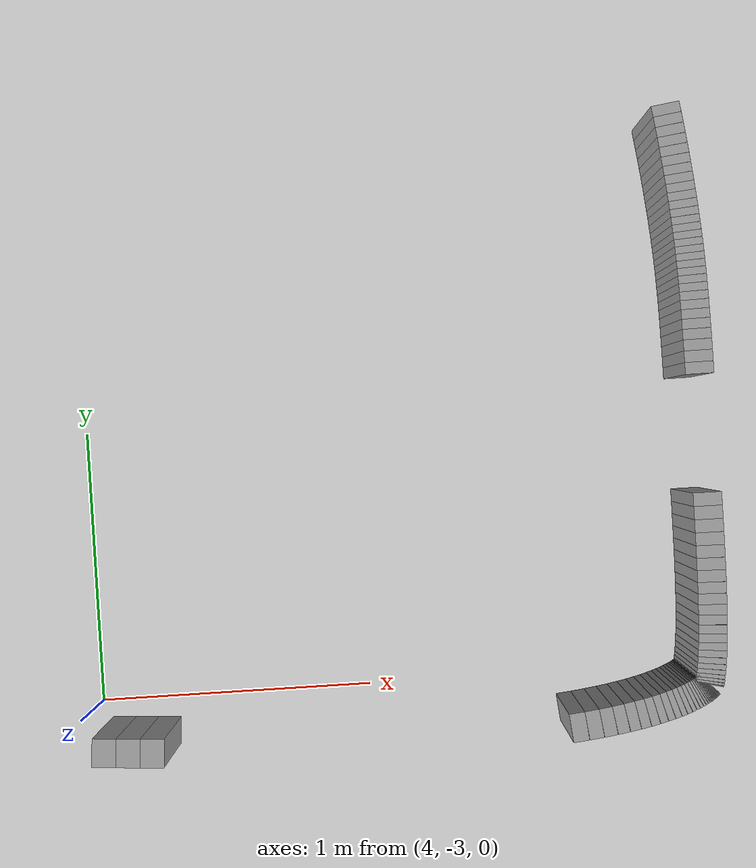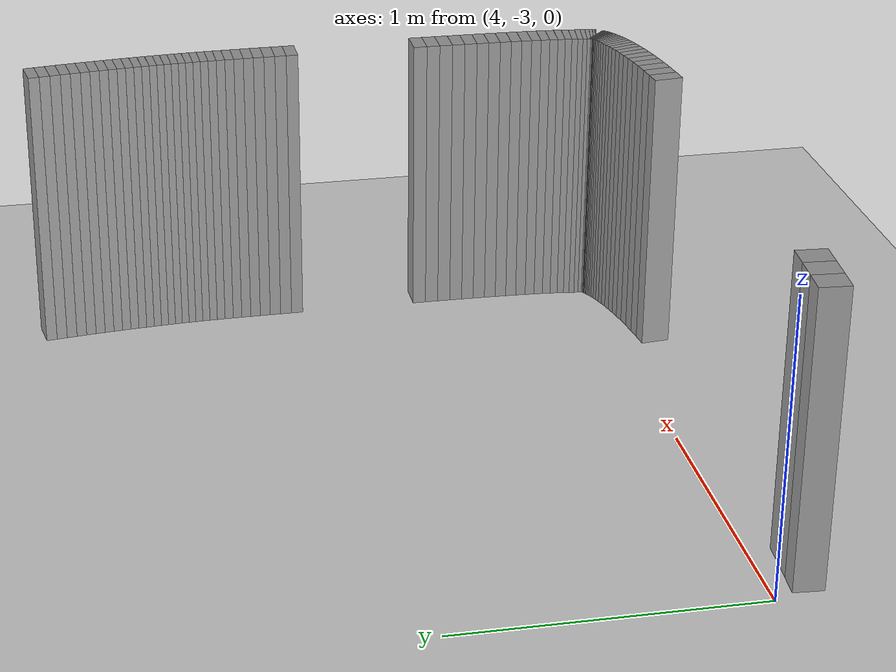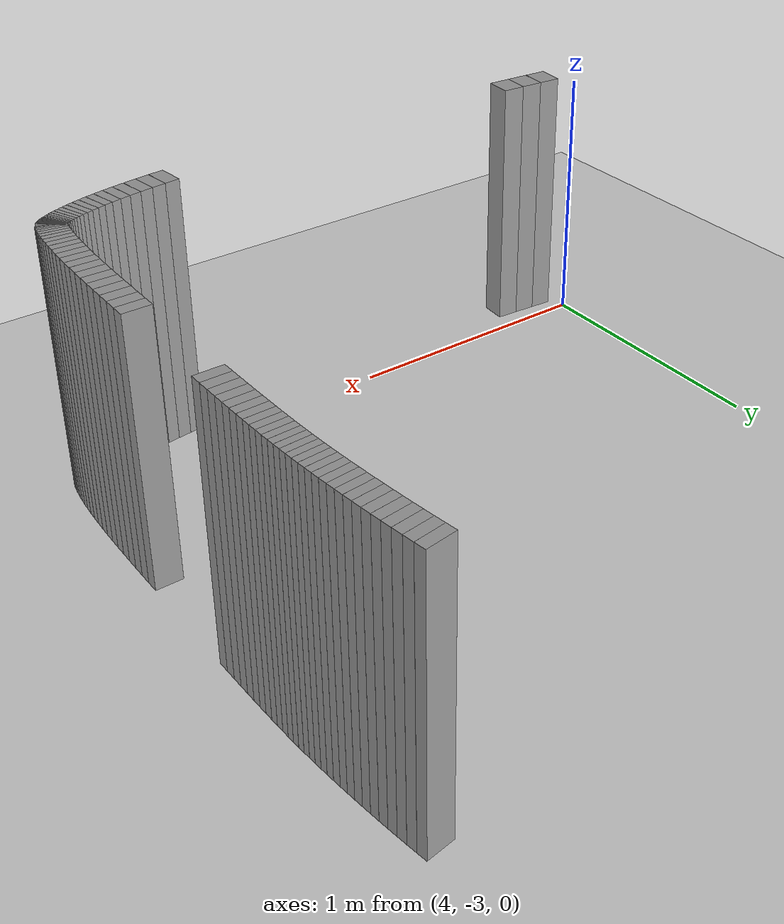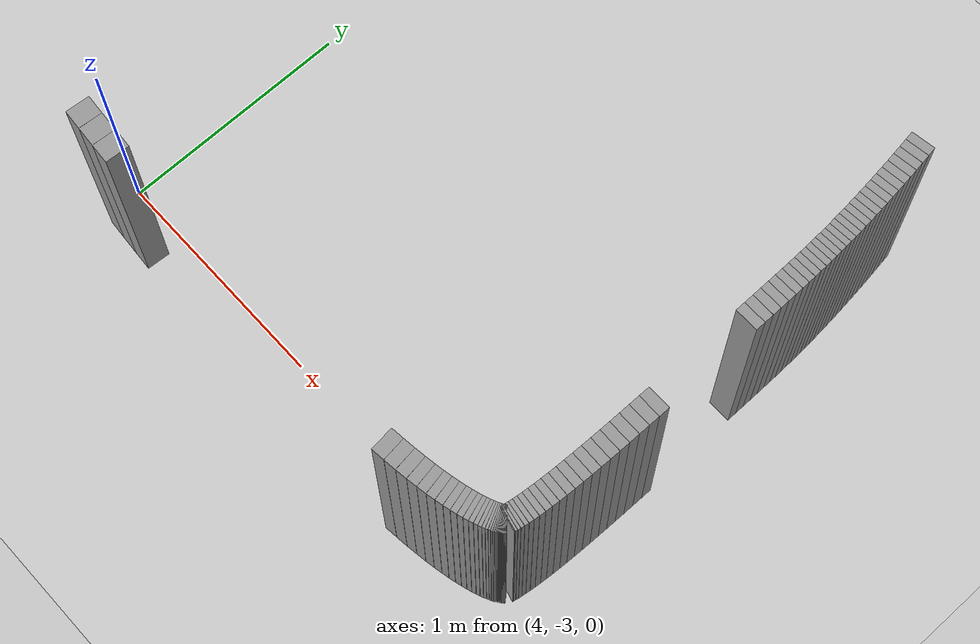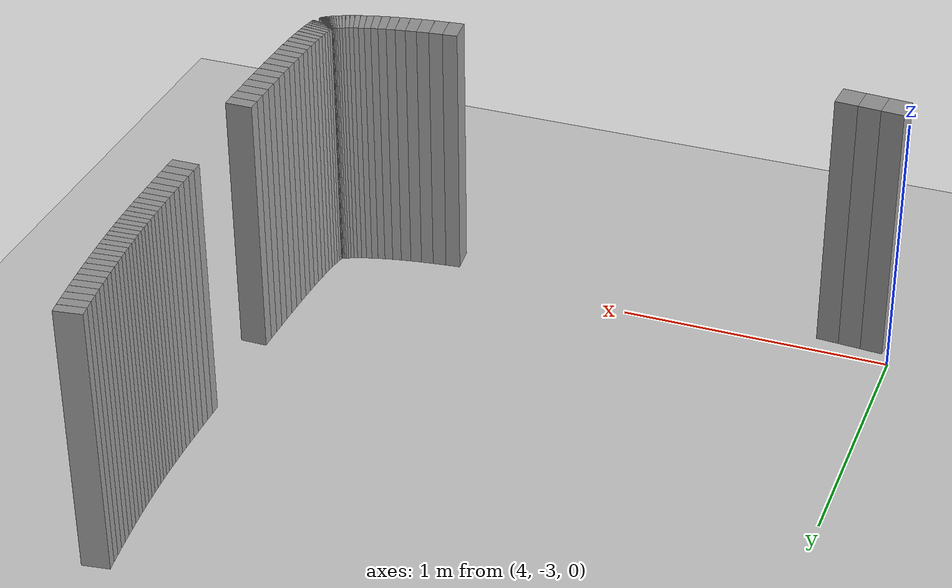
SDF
<sdf version="1.6">
 <world name="default">
  <include><uri>model://ground_plane</uri></include>
  <include><uri>model://sun</uri></include>
  <model name="wall_165_inward">
   <static>true</static>
   <link name="link">
    <collision name="collision">
     <geometry><box><size>0.03769008477148525 0.1 1.0</size></box></geometry>
    </collision>
    <visual name="visual">
     <geometry><box><size>0.03769008477148525 0.1 1.0</size></box></geometry>
     <material>
      <script><uri>file://media/materials/scripts/gazebo.material</uri><name>Gazebo/Gray</name></script>
     </material>
    </visual>
   </link>
   <pose>6.165826312685071 -1.0017829285059618 0.5 0 0 -1.428042933254244</pose>
  </model>
  <model name="wall_166_inward">
   <static>true</static>
   <link name="link">
    <collision name="collision">
     <geometry><box><size>0.03694005052563634 0.1 1.0</size></box></geometry>
    </collision>
    <visual name="visual">
     <geometry><box><size>0.03694005052563634 0.1 1.0</size></box></geometry>
     <material>
      <script><uri>file://media/materials/scripts/gazebo.material</uri><name>Gazebo/Gray</name></script>
     </material>
    </visual>
   </link>
   <pose>6.171017001210594 -1.0387350125768513 0.5 0 0 -1.4344992997071242</pose>
  </model>
  <model name="wall_167_inward">
   <static>true</static>
   <link name="link">
    <collision name="collision">
     <geometry><box><size>0.036135619583452974 0.1 1.0</size></box></geometry>
    </collision>
    <visual name="visual">
     <geometry><box><size>0.036135619583452974 0.1 1.0</size></box></geometry>
     <material>
      <script><uri>file://media/materials/scripts/gazebo.material</uri><name>Gazebo/Gray</name></script>
     </material>
    </visual>
   </link>
   <pose>6.17587252815796 -1.0749486131937773 0.5 0 0 -1.4405898298768083</pose>
  </model>
  <model name="wall_168_inward">
   <static>true</static>
   <link name="link">
    <collision name="collision">
     <geometry><box><size>0.03529366911256523 0.1 1.0</size></box></geometry>
    </collision>
    <visual name="visual">
     <geometry><box><size>0.03529366911256523 0.1 1.0</size></box></geometry>
     <material>
      <script><uri>file://media/materials/scripts/gazebo.material</uri><name>Gazebo/Gray</name></script>
     </material>
    </visual>
   </link>
   <pose>6.180408555358495 -1.1103738815318873 0.5 0 0 -1.4463669588708319</pose>
  </model>
  <model name="wall_169_inward">
   <static>true</static>
   <link name="link">
    <collision name="collision">
     <geometry><box><size>0.03441617881373105 0.1 1.0</size></box></geometry>
    </collision>
    <visual name="visual">
     <geometry><box><size>0.03441617881373105 0.1 1.0</size></box></geometry>
     <material>
      <script><uri>file://media/materials/scripts/gazebo.material</uri><name>Gazebo/Gray</name></script>
     </material>
    </visual>
   </link>
   <pose>6.1846405174336745 -1.144970804193298 0.5 0 0 -1.4518603352815578</pose>
  </model>
  <model name="wall_170_inward">
   <static>true</static>
   <link name="link">
    <collision name="collision">
     <geometry><box><size>0.03351853137748542 0.1 1.0</size></box></geometry>
    </collision>
    <visual name="visual">
     <geometry><box><size>0.03351853137748542 0.1 1.0</size></box></geometry>
     <material>
      <script><uri>file://media/materials/scripts/gazebo.material</uri><name>Gazebo/Gray</name></script>
     </material>
    </visual>
   </link>
   <pose>6.188583112290847 -1.1787084557046634 0.5 0 0 -1.4571365611139853</pose>
  </model>
  <model name="wall_171_inward">
   <static>true</static>
   <link name="link">
    <collision name="collision">
     <geometry><box><size>0.032618520442882784 0.1 1.0</size></box></geometry>
    </collision>
    <visual name="visual">
     <geometry><box><size>0.032618520442882784 0.1 1.0</size></box></geometry>
     <material>
      <script><uri>file://media/materials/scripts/gazebo.material</uri><name>Gazebo/Gray</name></script>
     </material>
    </visual>
   </link>
   <pose>6.192251115878644 -1.2115728145083888 0.5 0 0 -1.4622245822919695</pose>
  </model>
  <model name="wall_172_inward">
   <static>true</static>
   <link name="link">
    <collision name="collision">
     <geometry><box><size>0.03167970818063254 0.1 1.0</size></box></geometry>
    </collision>
    <visual name="visual">
     <geometry><box><size>0.03167970818063254 0.1 1.0</size></box></geometry>
     <material>
      <script><uri>file://media/materials/scripts/gazebo.material</uri><name>Gazebo/Gray</name></script>
     </material>
    </visual>
   </link>
   <pose>6.195656567493241 -1.2435409562384376 0.5 0 0 -1.4671881652302363</pose>
  </model>
  <model name="wall_173_inward">
   <static>true</static>
   <link name="link">
    <collision name="collision">
     <geometry><box><size>0.030714434373882882 0.1 1.0</size></box></geometry>
    </collision>
    <visual name="visual">
     <geometry><box><size>0.030714434373882882 0.1 1.0</size></box></geometry>
     <material>
      <script><uri>file://media/materials/scripts/gazebo.material</uri><name>Gazebo/Gray</name></script>
     </material>
    </visual>
   </link>
   <pose>6.198807910310039 -1.2745783596403597 0.5 0 0 -1.472106683401073</pose>
  </model>
  <model name="wall_174_inward">
   <static>true</static>
   <link name="link">
    <collision name="collision">
     <geometry><box><size>0.029761809969721362 0.1 1.0</size></box></geometry>
    </collision>
    <visual name="visual">
     <geometry><box><size>0.029761809969721362 0.1 1.0</size></box></geometry>
     <material>
      <script><uri>file://media/materials/scripts/gazebo.material</uri><name>Gazebo/Gray</name></script>
     </material>
    </visual>
   </link>
   <pose>6.201714138045457 -1.3046764044898609 0.5 0 0 -1.4770432001661258</pose>
  </model>
  <model name="wall_175_inward">
   <static>true</static>
   <link name="link">
    <collision name="collision">
     <geometry><box><size>0.028820882794825458 0.1 1.0</size></box></geometry>
    </collision>
    <visual name="visual">
     <geometry><box><size>0.028820882794825458 0.1 1.0</size></box></geometry>
     <material>
      <script><uri>file://media/materials/scripts/gazebo.material</uri><name>Gazebo/Gray</name></script>
     </material>
    </visual>
   </link>
   <pose>6.204384462638851 -1.333845685761562 0.5 0 0 -1.4820471836476088</pose>
  </model>
  <model name="wall_176_inward">
   <static>true</static>
   <link name="link">
    <collision name="collision">
     <geometry><box><size>0.027903336467644035 0.1 1.0</size></box></geometry>
    </collision>
    <visual name="visual">
     <geometry><box><size>0.027903336467644035 0.1 1.0</size></box></geometry>
     <material>
      <script><uri>file://media/materials/scripts/gazebo.material</uri><name>Gazebo/Gray</name></script>
     </material>
    </visual>
   </link>
   <pose>6.206826804546964 -1.362102347166072 0.5 0 0 -1.4871888129927506</pose>
  </model>
  <model name="wall_177_inward">
   <static>true</static>
   <link name="link">
    <collision name="collision">
     <geometry><box><size>0.0270523707900877 0.1 1.0</size></box></geometry>
    </collision>
    <visual name="visual">
     <geometry><box><size>0.0270523707900877 0.1 1.0</size></box></geometry>
     <material>
      <script><uri>file://media/materials/scripts/gazebo.material</uri><name>Gazebo/Gray</name></script>
     </material>
    </visual>
   </link>
   <pose>6.209049757877562 -1.3894900374145709 0.5 0 0 -1.4925090010600963</pose>
  </model>
  <model name="wall_178_inward">
   <static>true</static>
   <link name="link">
    <collision name="collision">
     <geometry><box><size>0.02631146801369019 0.1 1.0</size></box></geometry>
    </collision>
    <visual name="visual">
     <geometry><box><size>0.02631146801369019 0.1 1.0</size></box></geometry>
     <material>
      <script><uri>file://media/materials/scripts/gazebo.material</uri><name>Gazebo/Gray</name></script>
     </material>
    </visual>
   </link>
   <pose>6.211064016941197 -1.4160957163871084 0.5 0 0 -1.4980329214189838</pose>
  </model>
  <model name="wall_179_inward">
   <static>true</static>
   <link name="link">
    <collision name="collision">
     <geometry><box><size>0.025735425761342325 0.1 1.0</size></box></geometry>
    </collision>
    <visual name="visual">
     <geometry><box><size>0.025735425761342325 0.1 1.0</size></box></geometry>
     <material>
      <script><uri>file://media/materials/scripts/gazebo.material</uri><name>Gazebo/Gray</name></script>
     </material>
    </visual>
   </link>
   <pose>6.212882446308522 -1.4420554459528132 0.5 0 0 -1.5037553610382002</pose>
  </model>
  <model name="wall_180_inward">
   <static>true</static>
   <link name="link">
    <collision name="collision">
     <geometry><box><size>0.025351032624236908 0.1 1.0</size></box></geometry>
    </collision>
    <visual name="visual">
     <geometry><box><size>0.025351032624236908 0.1 1.0</size></box></geometry>
     <material>
      <script><uri>file://media/materials/scripts/gazebo.material</uri><name>Gazebo/Gray</name></script>
     </material>
    </visual>
   </link>
   <pose>6.214519178639419 -1.4675460720374944 0.5 0 0 -1.5096392413974757</pose>
  </model>
  <model name="wall_181_inward">
   <static>true</static>
   <link name="link">
    <collision name="collision">
     <geometry><box><size>0.02521358631246591 0.1 1.0</size></box></geometry>
    </collision>
    <visual name="visual">
     <geometry><box><size>0.02521358631246591 0.1 1.0</size></box></geometry>
     <material>
      <script><uri>file://media/materials/scripts/gazebo.material</uri><name>Gazebo/Gray</name></script>
     </material>
    </visual>
   </link>
   <pose>6.21598882221954 -1.4927855164861492 0.5 0 0 -1.515644989382938</pose>
  </model>
  <model name="wall_182_inward">
   <static>true</static>
   <link name="link">
    <collision name="collision">
     <geometry><box><size>0.02535261097809255 0.1 1.0</size></box></geometry>
    </collision>
    <visual name="visual">
     <geometry><box><size>0.02535261097809255 0.1 1.0</size></box></geometry>
     <material>
      <script><uri>file://media/materials/scripts/gazebo.material</uri><name>Gazebo/Gray</name></script>
     </material>
    </visual>
   </link>
   <pose>6.217306217585259 -1.5180341549019412 0.5 0 0 -1.5216718632926012</pose>
  </model>
  <model name="wall_183_inward">
   <static>true</static>
   <link name="link">
    <collision name="collision">
     <geometry><box><size>0.025776927293348663 0.1 1.0</size></box></geometry>
    </collision>
    <visual name="visual">
     <geometry><box><size>0.025776927293348663 0.1 1.0</size></box></geometry>
     <material>
      <script><uri>file://media/materials/scripts/gazebo.material</uri><name>Gazebo/Gray</name></script>
     </material>
    </visual>
   </link>
   <pose>6.218484709733382 -1.543571632358864 0.5 0 0 -1.5276415717731542</pose>
  </model>
  <model name="wall_184_inward">
   <static>true</static>
   <link name="link">
    <collision name="collision">
     <geometry><box><size>0.026505505559030643 0.1 1.0</size></box></geometry>
    </collision>
    <visual name="visual">
     <geometry><box><size>0.026505505559030643 0.1 1.0</size></box></geometry>
     <material>
      <script><uri>file://media/materials/scripts/gazebo.material</uri><name>Gazebo/Gray</name></script>
     </material>
    </visual>
   </link>
   <pose>6.219535730182532 -1.5696916020130258 0.5 0 0 -1.533437315409795</pose>
  </model>
  <model name="wall_185_inward">
   <static>true</static>
   <link name="link">
    <collision name="collision">
     <geometry><box><size>0.027519008381139753 0.1 1.0</size></box></geometry>
    </collision>
    <visual name="visual">
     <geometry><box><size>0.027519008381139753 0.1 1.0</size></box></geometry>
     <material>
      <script><uri>file://media/materials/scripts/gazebo.material</uri><name>Gazebo/Gray</name></script>
     </material>
    </visual>
   </link>
   <pose>6.220468764063071 -1.5966876373080385 0.5 0 0 -1.5389555482137254</pose>
  </model>
  <model name="wall_186_inward">
   <static>true</static>
   <link name="link">
    <collision name="collision">
     <geometry><box><size>0.028777073183986222 0.1 1.0</size></box></geometry>
    </collision>
    <visual name="visual">
     <geometry><box><size>0.028777073183986222 0.1 1.0</size></box></geometry>
     <material>
      <script><uri>file://media/materials/scripts/gazebo.material</uri><name>Gazebo/Gray</name></script>
     </material>
    </visual>
   </link>
   <pose>6.221290962568936 -1.624823574502067 0.5 0 0 -1.5440941769633163</pose>
  </model>
  <model name="wall_187_inward">
   <static>true</static>
   <link name="link">
    <collision name="collision">
     <geometry><box><size>0.03022584780638957 0.1 1.0</size></box></geometry>
    </collision>
    <visual name="visual">
     <geometry><box><size>0.03022584780638957 0.1 1.0</size></box></geometry>
     <material>
      <script><uri>file://media/materials/scripts/gazebo.material</uri><name>Gazebo/Gray</name></script>
     </material>
    </visual>
   </link>
   <pose>6.2220077391269495 -1.6543162450560405 0.5 0 0 -1.5487857473932016</pose>
  </model>
  <model name="wall_188_inward">
   <static>true</static>
   <link name="link">
    <collision name="collision">
     <geometry><box><size>0.03184132986319126 0.1 1.0</size></box></geometry>
    </collision>
    <visual name="visual">
     <geometry><box><size>0.03184132986319126 0.1 1.0</size></box></geometry>
     <material>
      <script><uri>file://media/materials/scripts/gazebo.material</uri><name>Gazebo/Gray</name></script>
     </material>
    </visual>
   </link>
   <pose>6.222624000035021 -1.6853436462865816 0.5 0 0 -1.5529793220624835</pose>
  </model>
  <model name="wall_189_inward">
   <static>true</static>
   <link name="link">
    <collision name="collision">
     <geometry><box><size>0.033562156236800554 0.1 1.0</size></box></geometry>
    </collision>
    <visual name="visual">
     <geometry><box><size>0.033562156236800554 0.1 1.0</size></box></geometry>
     <material>
      <script><uri>file://media/materials/scripts/gazebo.material</uri><name>Gazebo/Gray</name></script>
     </material>
    </visual>
   </link>
   <pose>6.223145408959185 -1.718041177937717 0.5 0 0 -1.5566271939475904</pose>
  </model>
  <model name="wall_190_inward">
   <static>true</static>
   <link name="link">
    <collision name="collision">
     <geometry><box><size>0.035314105375348424 0.1 1.0</size></box></geometry>
    </collision>
    <visual name="visual">
     <geometry><box><size>0.035314105375348424 0.1 1.0</size></box></geometry>
     <material>
      <script><uri>file://media/materials/scripts/gazebo.material</uri><name>Gazebo/Gray</name></script>
     </material>
    </visual>
   </link>
   <pose>6.223578479408387 -1.7524765440809489 0.5 0 0 -1.5597350774372214</pose>
  </model>
  <model name="wall_191_inward">
   <static>true</static>
   <link name="link">
    <collision name="collision">
     <geometry><box><size>0.037038467531977814 0.1 1.0</size></box></geometry>
    </collision>
    <visual name="visual">
     <geometry><box><size>0.037038467531977814 0.1 1.0</size></box></geometry>
     <material>
      <script><uri>file://media/materials/scripts/gazebo.material</uri><name>Gazebo/Gray</name></script>
     </material>
    </visual>
   </link>
   <pose>6.223930735011534 -1.7886510852746467 0.5 0 0 -1.5623212244213323</pose>
  </model>
  <model name="wall_192_inward">
   <static>true</static>
   <link name="link">
    <collision name="collision">
     <geometry><box><size>0.038717809985661246 0.1 1.0</size></box></geometry>
    </collision>
    <visual name="visual">
     <geometry><box><size>0.038717809985661246 0.1 1.0</size></box></geometry>
     <material>
      <script><uri>file://media/materials/scripts/gazebo.material</uri><name>Gazebo/Gray</name></script>
     </material>
    </visual>
   </link>
   <pose>6.224210724380571 -1.8265281679424015 0.5 0 0 -1.5644406122383732</pose>
  </model>
  <model name="wall_193_inward">
   <static>true</static>
   <link name="link">
    <collision name="collision">
     <geometry><box><size>0.04030778518933972 0.1 1.0</size></box></geometry>
    </collision>
    <visual name="visual">
     <geometry><box><size>0.04030778518933972 0.1 1.0</size></box></geometry>
     <material>
      <script><uri>file://media/materials/scripts/gazebo.material</uri><name>Gazebo/Gray</name></script>
     </material>
    </visual>
   </link>
   <pose>6.224428109773248 -1.8660403536949364 0.5 0 0 -1.5661150032770246</pose>
  </model>
  <model name="wall_194_inward">
   <static>true</static>
   <link name="link">
    <collision name="collision">
     <geometry><box><size>0.041753919791112586 0.1 1.0</size></box></geometry>
    </collision>
    <visual name="visual">
     <geometry><box><size>0.041753919791112586 0.1 1.0</size></box></geometry>
     <material>
      <script><uri>file://media/materials/scripts/gazebo.material</uri><name>Gazebo/Gray</name></script>
     </material>
    </visual>
   </link>
   <pose>6.224592764415245 -1.907070866961508 0.5 0 0 -1.5674285841508717</pose>
  </model>
  <model name="wall_204_inward">
   <static>true</static>
   <link name="link">
    <collision name="collision">
     <geometry><box><size>0.04695927782081471 0.1 1.0</size></box></geometry>
    </collision>
    <visual name="visual">
     <geometry><box><size>0.04695927782081471 0.1 1.0</size></box></geometry>
     <material>
      <script><uri>file://media/materials/scripts/gazebo.material</uri><name>Gazebo/Gray</name></script>
     </material>
    </visual>
   </link>
   <pose>6.224571472676045 -2.3651664679830984 0.5 0 0 -1.5742986877956473</pose>
  </model>
  <model name="wall_205_inward">
   <static>true</static>
   <link name="link">
    <collision name="collision">
     <geometry><box><size>0.04651144333122635 0.1 1.0</size></box></geometry>
    </collision>
    <visual name="visual">
     <geometry><box><size>0.04651144333122635 0.1 1.0</size></box></geometry>
     <material>
      <script><uri>file://media/materials/scripts/gazebo.material</uri><name>Gazebo/Gray</name></script>
     </material>
    </visual>
   </link>
   <pose>6.224373128002071 -2.4119013946931442 0.5 0 0 -1.5757891261814816</pose>
  </model>
  <model name="wall_206_inward">
   <static>true</static>
   <link name="link">
    <collision name="collision">
     <geometry><box><size>0.04586961223737825 0.1 1.0</size></box></geometry>
    </collision>
    <visual name="visual">
     <geometry><box><size>0.04586961223737825 0.1 1.0</size></box></geometry>
     <material>
      <script><uri>file://media/materials/scripts/gazebo.material</uri><name>Gazebo/Gray</name></script>
     </material>
    </visual>
   </link>
   <pose>6.224097712957914 -2.458091079350181 0.5 0 0 -1.5777423482208357</pose>
  </model>
  <model name="wall_207_inward">
   <static>true</static>
   <link name="link">
    <collision name="collision">
     <geometry><box><size>0.04503695395410372 0.1 1.0</size></box></geometry>
    </collision>
    <visual name="visual">
     <geometry><box><size>0.04503695395410372 0.1 1.0</size></box></geometry>
     <material>
      <script><uri>file://media/materials/scripts/gazebo.material</uri><name>Gazebo/Gray</name></script>
     </material>
    </visual>
   </link>
   <pose>6.223724703419569 -2.5035427951011986 0.5 0 0 -1.5802866832191245</pose>
  </model>
  <model name="wall_208_inward">
   <static>true</static>
   <link name="link">
    <collision name="collision">
     <geometry><box><size>0.04404420955245194 0.1 1.0</size></box></geometry>
    </collision>
    <visual name="visual">
     <geometry><box><size>0.04404420955245194 0.1 1.0</size></box></geometry>
     <material>
      <script><uri>file://media/materials/scripts/gazebo.material</uri><name>Gazebo/Gray</name></script>
     </material>
    </visual>
   </link>
   <pose>6.2232308250095105 -2.5480805804725666 0.5 0 0 -1.5835190345868775</pose>
  </model>
  <model name="wall_209_inward">
   <static>true</static>
   <link name="link">
    <collision name="collision">
     <geometry><box><size>0.04287109927961723 0.1 1.0</size></box></geometry>
    </collision>
    <visual name="visual">
     <geometry><box><size>0.04287109927961723 0.1 1.0</size></box></geometry>
     <material>
      <script><uri>file://media/materials/scripts/gazebo.material</uri><name>Gazebo/Gray</name></script>
     </material>
    </visual>
   </link>
   <pose>6.222591716425569 -2.591533447211204 0.5 0 0 -1.5875419722461719</pose>
  </model>
  <model name="wall_210_inward">
   <static>true</static>
   <link name="link">
    <collision name="collision">
     <geometry><box><size>0.041505104173367446 0.1 1.0</size></box></geometry>
    </collision>
    <visual name="visual">
     <geometry><box><size>0.041505104173367446 0.1 1.0</size></box></geometry>
     <material>
      <script><uri>file://media/materials/scripts/gazebo.material</uri><name>Gazebo/Gray</name></script>
     </material>
    </visual>
   </link>
   <pose>6.221783034206256 -2.6337136695622556 0.5 0 0 -1.5924699065946089</pose>
  </model>
  <model name="wall_211_inward">
   <static>true</static>
   <link name="link">
    <collision name="collision">
     <geometry><box><size>0.03996969544358084 0.1 1.0</size></box></geometry>
    </collision>
    <visual name="visual">
     <geometry><box><size>0.03996969544358084 0.1 1.0</size></box></geometry>
     <material>
      <script><uri>file://media/materials/scripts/gazebo.material</uri><name>Gazebo/Gray</name></script>
     </material>
    </visual>
   </link>
   <pose>6.220781511228958 -2.674438576722877 0.5 0 0 -1.5984095581346407</pose>
  </model>
  <model name="wall_212_inward">
   <static>true</static>
   <link name="link">
    <collision name="collision">
     <geometry><box><size>0.03826098814976795 0.1 1.0</size></box></geometry>
    </collision>
    <visual name="visual">
     <geometry><box><size>0.03826098814976795 0.1 1.0</size></box></geometry>
     <material>
      <script><uri>file://media/materials/scripts/gazebo.material</uri><name>Gazebo/Gray</name></script>
     </material>
    </visual>
   </link>
   <pose>6.219567163102524 -2.7135348225596774 0.5 0 0 -1.6054375944070975</pose>
  </model>
  <model name="wall_213_inward">
   <static>true</static>
   <link name="link">
    <collision name="collision">
     <geometry><box><size>0.036381519193182554 0.1 1.0</size></box></geometry>
    </collision>
    <visual name="visual">
     <geometry><box><size>0.036381519193182554 0.1 1.0</size></box></geometry>
     <material>
      <script><uri>file://media/materials/scripts/gazebo.material</uri><name>Gazebo/Gray</name></script>
     </material>
    </visual>
   </link>
   <pose>6.218125377082274 -2.750827902163306 0.5 0 0 -1.613645141297363</pose>
  </model>
  <model name="wall_214_inward">
   <static>true</static>
   <link name="link">
    <collision name="collision">
     <geometry><box><size>0.03434224202824186 0.1 1.0</size></box></geometry>
    </collision>
    <visual name="visual">
     <geometry><box><size>0.03434224202824186 0.1 1.0</size></box></geometry>
     <material>
      <script><uri>file://media/materials/scripts/gazebo.material</uri><name>Gazebo/Gray</name></script>
     </material>
    </visual>
   </link>
   <pose>6.21644870567768 -2.7861496169477826 0.5 0 0 -1.623085662567796</pose>
  </model>
  <model name="wall_215_inward">
   <static>true</static>
   <link name="link">
    <collision name="collision">
     <geometry><box><size>0.032119311741112835 0.1 1.0</size></box></geometry>
    </collision>
    <visual name="visual">
     <geometry><box><size>0.032119311741112835 0.1 1.0</size></box></geometry>
     <material>
      <script><uri>file://media/materials/scripts/gazebo.material</uri><name>Gazebo/Gray</name></script>
     </material>
    </visual>
   </link>
   <pose>6.214539807024044 -2.8193250426981016 0.5 0 0 -1.6338182927030787</pose>
  </model>
  <model name="wall_216_inward">
   <static>true</static>
   <link name="link">
    <collision name="collision">
     <geometry><box><size>0.029744395570051194 0.1 1.0</size></box></geometry>
    </collision>
    <visual name="visual">
     <geometry><box><size>0.029744395570051194 0.1 1.0</size></box></geometry>
     <material>
      <script><uri>file://media/materials/scripts/gazebo.material</uri><name>Gazebo/Gray</name></script>
     </material>
    </visual>
   </link>
   <pose>6.212412454721868 -2.8501830899193585 0.5 0 0 -1.6459002783674295</pose>
  </model>
  <model name="wall_217_inward">
   <static>true</static>
   <link name="link">
    <collision name="collision">
     <geometry><box><size>0.027242292738697313 0.1 1.0</size></box></geometry>
    </collision>
    <visual name="visual">
     <geometry><box><size>0.027242292738697313 0.1 1.0</size></box></geometry>
     <material>
      <script><uri>file://media/materials/scripts/gazebo.material</uri><name>Gazebo/Gray</name></script>
     </material>
    </visual>
   </link>
   <pose>6.210091993660688 -2.8785811445685514 0.5 0 0 -1.6593443463984123</pose>
  </model>
  <model name="wall_218_inward">
   <static>true</static>
   <link name="link">
    <collision name="collision">
     <geometry><box><size>0.024618348403085074 0.1 1.0</size></box></geometry>
    </collision>
    <visual name="visual">
     <geometry><box><size>0.024618348403085074 0.1 1.0</size></box></geometry>
     <material>
      <script><uri>file://media/materials/scripts/gazebo.material</uri><name>Gazebo/Gray</name></script>
     </material>
    </visual>
   </link>
   <pose>6.207617220924776 -2.904392385436734 0.5 0 0 -1.6741735303782834</pose>
  </model>
  <model name="wall_219_inward">
   <static>true</static>
   <link name="link">
    <collision name="collision">
     <geometry><box><size>0.02191702156577735 0.1 1.0</size></box></geometry>
    </collision>
    <visual name="visual">
     <geometry><box><size>0.02191702156577735 0.1 1.0</size></box></geometry>
     <material>
      <script><uri>file://media/materials/scripts/gazebo.material</uri><name>Gazebo/Gray</name></script>
     </material>
    </visual>
   </link>
   <pose>6.205039539733223 -2.9275160799437105 0.5 0 0 -1.6903910811425156</pose>
  </model>
  <model name="wall_220_inward">
   <static>true</static>
   <link name="link">
    <collision name="collision">
     <geometry><box><size>0.019169171065463547 0.1 1.0</size></box></geometry>
    </collision>
    <visual name="visual">
     <geometry><box><size>0.019169171065463547 0.1 1.0</size></box></geometry>
     <material>
      <script><uri>file://media/materials/scripts/gazebo.material</uri><name>Gazebo/Gray</name></script>
     </material>
    </visual>
   </link>
   <pose>6.202421364033324 -2.947890855363979 0.5 0 0 -1.7079788223933252</pose>
  </model>
  <model name="wall_221_inward">
   <static>true</static>
   <link name="link">
    <collision name="collision">
     <geometry><box><size>0.016422924766813788 0.1 1.0</size></box></geometry>
    </collision>
    <visual name="visual">
     <geometry><box><size>0.016422924766813788 0.1 1.0</size></box></geometry>
     <material>
      <script><uri>file://media/materials/scripts/gazebo.material</uri><name>Gazebo/Gray</name></script>
     </material>
    </visual>
   </link>
   <pose>6.199833864402896 -2.965496988921157 0.5 0 0 -1.7269175869172753</pose>
  </model>
  <model name="wall_222_inward">
   <static>true</static>
   <link name="link">
    <collision name="collision">
     <geometry><box><size>0.013725154899781974 0.1 1.0</size></box></geometry>
    </collision>
    <visual name="visual">
     <geometry><box><size>0.013725154899781974 0.1 1.0</size></box></geometry>
     <material>
      <script><uri>file://media/materials/scripts/gazebo.material</uri><name>Gazebo/Gray</name></script>
     </material>
    </visual>
   </link>
   <pose>6.197353059948433 -2.9803647124922223 0.5 0 0 -1.7471566290871936</pose>
  </model>
  <model name="wall_223_inward">
   <static>true</static>
   <link name="link">
    <collision name="collision">
     <geometry><box><size>0.011113207627965338 0.1 1.0</size></box></geometry>
    </collision>
    <visual name="visual">
     <geometry><box><size>0.011113207627965338 0.1 1.0</size></box></geometry>
     <material>
      <script><uri>file://media/materials/scripts/gazebo.material</uri><name>Gazebo/Gray</name></script>
     </material>
    </visual>
   </link>
   <pose>6.1950568278941365 -2.992569046725828 0.5 0 0 -1.7686452852061632</pose>
  </model>
  <model name="wall_224_inward">
   <static>true</static>
   <link name="link">
    <collision name="collision">
     <geometry><box><size>0.008653469953060688 0.1 1.0</size></box></geometry>
    </collision>
    <visual name="visual">
     <geometry><box><size>0.008653469953060688 0.1 1.0</size></box></geometry>
     <material>
      <script><uri>file://media/materials/scripts/gazebo.material</uri><name>Gazebo/Gray</name></script>
     </material>
    </visual>
   </link>
   <pose>6.193018201265881 -3.002239208607879 0.5 0 0 -1.791316173957997</pose>
  </model>
  <model name="wall_225_inward">
   <static>true</static>
   <link name="link">
    <collision name="collision">
     <geometry><box><size>0.0032931274266845226 0.1 1.0</size></box></geometry>
    </collision>
    <visual name="visual">
     <geometry><box><size>0.0032931274266845226 0.1 1.0</size></box></geometry>
     <material>
      <script><uri>file://media/materials/scripts/gazebo.material</uri><name>Gazebo/Gray</name></script>
     </material>
    </visual>
   </link>
   <pose>6.1916735583205345 -3.0080588488457476 0.5 0 0 -1.8150713727096726</pose>
  </model>
  <model name="wall_226_inward">
   <static>true</static>
   <link name="link">
    <collision name="collision">
     <geometry><box><size>0.000502493841828454 0.1 1.0</size></box></geometry>
    </collision>
    <visual name="visual">
     <geometry><box><size>0.000502493841828454 0.1 1.0</size></box></geometry>
     <material>
      <script><uri>file://media/materials/scripts/gazebo.material</uri><name>Gazebo/Gray</name></script>
     </material>
    </visual>
   </link>
   <pose>6.19109946915157 -3.0098359668469774 0.5 0 0 -2.3461382190747897</pose>
  </model>
  <model name="wall_227_inward">
   <static>true</static>
   <link name="link">
    <collision name="collision">
     <geometry><box><size>0.0032053922430402516 0.1 1.0</size></box></geometry>
    </collision>
    <visual name="visual">
     <geometry><box><size>0.0032053922430402516 0.1 1.0</size></box></geometry>
     <material>
      <script><uri>file://media/materials/scripts/gazebo.material</uri><name>Gazebo/Gray</name></script>
     </material>
    </visual>
   </link>
   <pose>6.189770347575511 -3.0111283400154143 0.5 0 0 -2.3739852095323126</pose>
  </model>
  <model name="wall_228_inward">
   <static>true</static>
   <link name="link">
    <collision name="collision">
     <geometry><box><size>0.0033035171840029155 0.1 1.0</size></box></geometry>
    </collision>
    <visual name="visual">
     <geometry><box><size>0.0033035171840029155 0.1 1.0</size></box></geometry>
     <material>
      <script><uri>file://media/materials/scripts/gazebo.material</uri><name>Gazebo/Gray</name></script>
     </material>
    </visual>
   </link>
   <pose>6.187396975996469 -3.013354664402091 0.5 0 0 -2.401898949952272</pose>
  </model>
  <model name="wall_229_inward">
   <static>true</static>
   <link name="link">
    <collision name="collision">
     <geometry><box><size>0.0033065890804431725 0.1 1.0</size></box></geometry>
    </collision>
    <visual name="visual">
     <geometry><box><size>0.0033065890804431725 0.1 1.0</size></box></geometry>
     <material>
      <script><uri>file://media/materials/scripts/gazebo.material</uri><name>Gazebo/Gray</name></script>
     </material>
    </visual>
   </link>
   <pose>6.1849248255866165 -3.0155477667543322 0.5 0 0 -2.429962896665577</pose>
  </model>
  <model name="wall_230_inward">
   <static>true</static>
   <link name="link">
    <collision name="collision">
     <geometry><box><size>0.0032910695816038412 0.1 1.0</size></box></geometry>
    </collision>
    <visual name="visual">
     <geometry><box><size>0.0032910695816038412 0.1 1.0</size></box></geometry>
     <material>
      <script><uri>file://media/materials/scripts/gazebo.material</uri><name>Gazebo/Gray</name></script>
     </material>
    </visual>
   </link>
   <pose>6.182396781300842 -3.0176665158601166 0.5 0 0 -2.4582014664275174</pose>
  </model>
  <model name="wall_231_inward">
   <static>true</static>
   <link name="link">
    <collision name="collision">
     <geometry><box><size>0.003291938836477876 0.1 1.0</size></box></geometry>
    </collision>
    <visual name="visual">
     <geometry><box><size>0.003291938836477876 0.1 1.0</size></box></geometry>
     <material>
      <script><uri>file://media/materials/scripts/gazebo.material</uri><name>Gazebo/Gray</name></script>
     </material>
    </visual>
   </link>
   <pose>6.17981540089555 -3.0197081538788915 0.5 0 0 -2.486633567988913</pose>
  </model>
  <model name="wall_232_inward">
   <static>true</static>
   <link name="link">
    <collision name="collision">
     <geometry><box><size>0.0034033189300525335 0.1 1.0</size></box></geometry>
    </collision>
    <visual name="visual">
     <geometry><box><size>0.0034033189300525335 0.1 1.0</size></box></geometry>
     <material>
      <script><uri>file://media/materials/scripts/gazebo.material</uri><name>Gazebo/Gray</name></script>
     </material>
    </visual>
   </link>
   <pose>6.177131367214331 -3.021708225488684 0.5 0 0 -2.51526503027296</pose>
  </model>
  <model name="wall_233_inward">
   <static>true</static>
   <link name="link">
    <collision name="collision">
     <geometry><box><size>0.003708656428601898 0.1 1.0</size></box></geometry>
    </collision>
    <visual name="visual">
     <geometry><box><size>0.003708656428601898 0.1 1.0</size></box></geometry>
     <material>
      <script><uri>file://media/materials/scripts/gazebo.material</uri><name>Gazebo/Gray</name></script>
     </material>
    </visual>
   </link>
   <pose>6.174219711803826 -3.0237489850538903 0.5 0 0 -2.544034637988338</pose>
  </model>
  <model name="wall_234_inward">
   <static>true</static>
   <link name="link">
    <collision name="collision">
     <geometry><box><size>0.004245803053652441 0.1 1.0</size></box></geometry>
    </collision>
    <visual name="visual">
     <geometry><box><size>0.004245803053652441 0.1 1.0</size></box></geometry>
     <material>
      <script><uri>file://media/materials/scripts/gazebo.material</uri><name>Gazebo/Gray</name></script>
     </material>
    </visual>
   </link>
   <pose>6.1708979719094526 -3.0259355635707688 0.5 0 0 -2.5728785623424373</pose>
  </model>
  <model name="wall_235_inward">
   <static>true</static>
   <link name="link">
    <collision name="collision">
     <geometry><box><size>0.005047603264368933 0.1 1.0</size></box></geometry>
    </collision>
    <visual name="visual">
     <geometry><box><size>0.005047603264368933 0.1 1.0</size></box></geometry>
     <material>
      <script><uri>file://media/materials/scripts/gazebo.material</uri><name>Gazebo/Gray</name></script>
     </material>
    </visual>
   </link>
   <pose>6.16694439133202 -3.028376177871051 0.5 0 0 -2.601707880363367</pose>
  </model>
  <model name="wall_236_inward">
   <static>true</static>
   <link name="link">
    <collision name="collision">
     <geometry><box><size>0.006124557436920943 0.1 1.0</size></box></geometry>
    </collision>
    <visual name="visual">
     <geometry><box><size>0.006124557436920943 0.1 1.0</size></box></geometry>
     <material>
      <script><uri>file://media/materials/scripts/gazebo.material</uri><name>Gazebo/Gray</name></script>
     </material>
    </visual>
   </link>
   <pose>6.162108700918914 -3.0311715337359715 0.5 0 0 -2.63043487753726</pose>
  </model>
  <model name="wall_237_inward">
   <static>true</static>
   <link name="link">
    <collision name="collision">
     <geometry><box><size>0.007485987754167633 0.1 1.0</size></box></geometry>
    </collision>
    <visual name="visual">
     <geometry><box><size>0.007485987754167633 0.1 1.0</size></box></geometry>
     <material>
      <script><uri>file://media/materials/scripts/gazebo.material</uri><name>Gazebo/Gray</name></script>
     </material>
    </visual>
   </link>
   <pose>6.156122382726837 -3.0344067153821133 0.5 0 0 -2.6589652730592883</pose>
  </model>
  <model name="wall_238_inward">
   <static>true</static>
   <link name="link">
    <collision name="collision">
     <geometry><box><size>0.009088564923939668 0.1 1.0</size></box></geometry>
    </collision>
    <visual name="visual">
     <geometry><box><size>0.009088564923939668 0.1 1.0</size></box></geometry>
     <material>
      <script><uri>file://media/materials/scripts/gazebo.material</uri><name>Gazebo/Gray</name></script>
     </material>
    </visual>
   </link>
   <pose>6.148723750603851 -3.0381384215487306 0.5 0 0 -2.6872021525940806</pose>
  </model>
  <model name="wall_239_inward">
   <static>true</static>
   <link name="link">
    <collision name="collision">
     <geometry><box><size>0.010896344614812167 0.1 1.0</size></box></geometry>
    </collision>
    <visual name="visual">
     <geometry><box><size>0.010896344614812167 0.1 1.0</size></box></geometry>
     <material>
      <script><uri>file://media/materials/scripts/gazebo.material</uri><name>Gazebo/Gray</name></script>
     </material>
    </visual>
   </link>
   <pose>6.139680461963161 -3.0423868124941107 0.5 0 0 -2.7150924524757425</pose>
  </model>
  <model name="wall_240_inward">
   <static>true</static>
   <link name="link">
    <collision name="collision">
     <geometry><box><size>0.012899204157988411 0.1 1.0</size></box></geometry>
    </collision>
    <visual name="visual">
     <geometry><box><size>0.012899204157988411 0.1 1.0</size></box></geometry>
     <material>
      <script><uri>file://media/materials/scripts/gazebo.material</uri><name>Gazebo/Gray</name></script>
     </material>
    </visual>
   </link>
   <pose>6.128777406074317 -3.0471464210857295 0.5 0 0 -2.742572697752336</pose>
  </model>
  <model name="wall_241_inward">
   <static>true</static>
   <link name="link">
    <collision name="collision">
     <geometry><box><size>0.015044842523793052 0.1 1.0</size></box></geometry>
    </collision>
    <visual name="visual">
     <geometry><box><size>0.015044842523793052 0.1 1.0</size></box></geometry>
     <material>
      <script><uri>file://media/materials/scripts/gazebo.material</uri><name>Gazebo/Gray</name></script>
     </material>
    </visual>
   </link>
   <pose>6.115826559902662 -3.052386420617019 0.5 0 0 -2.769594874830665</pose>
  </model>
  <model name="wall_242_inward">
   <static>true</static>
   <link name="link">
    <collision name="collision">
     <geometry><box><size>0.017314820857571786 0.1 1.0</size></box></geometry>
    </collision>
    <visual name="visual">
     <geometry><box><size>0.017314820857571786 0.1 1.0</size></box></geometry>
     <material>
      <script><uri>file://media/materials/scripts/gazebo.material</uri><name>Gazebo/Gray</name></script>
     </material>
    </visual>
   </link>
   <pose>6.100672688876738 -3.058052216902845 0.5 0 0 -2.7961434452305602</pose>
  </model>
  <model name="wall_243_inward">
   <static>true</static>
   <link name="link">
    <collision name="collision">
     <geometry><box><size>0.019737655176161436 0.1 1.0</size></box></geometry>
    </collision>
    <visual name="visual">
     <geometry><box><size>0.019737655176161436 0.1 1.0</size></box></geometry>
     <material>
      <script><uri>file://media/materials/scripts/gazebo.material</uri><name>Gazebo/Gray</name></script>
     </material>
    </visual>
   </link>
   <pose>6.083157053501942 -3.0640826463034267 0.5 0 0 -2.822184057571198</pose>
  </model>
  <model name="wall_244_inward">
   <static>true</static>
   <link name="link">
    <collision name="collision">
     <geometry><box><size>0.022324343564199527 0.1 1.0</size></box></geometry>
    </collision>
    <visual name="visual">
     <geometry><box><size>0.022324343564199527 0.1 1.0</size></box></geometry>
     <material>
      <script><uri>file://media/materials/scripts/gazebo.material</uri><name>Gazebo/Gray</name></script>
     </material>
    </visual>
   </link>
   <pose>6.063103892993345 -3.0704152706723162 0.5 0 0 -2.847671711338075</pose>
  </model>
  <model name="wall_245_inward">
   <static>true</static>
   <link name="link">
    <collision name="collision">
     <geometry><box><size>0.0251092431020416 0.1 1.0</size></box></geometry>
    </collision>
    <visual name="visual">
     <geometry><box><size>0.0251092431020416 0.1 1.0</size></box></geometry>
     <material>
      <script><uri>file://media/materials/scripts/gazebo.material</uri><name>Gazebo/Gray</name></script>
     </material>
    </visual>
   </link>
   <pose>6.040317395639242 -3.0769860412358834 0.5 0 0 -2.8725597831320875</pose>
  </model>
  <model name="wall_246_inward">
   <static>true</static>
   <link name="link">
    <collision name="collision">
     <geometry><box><size>0.028118852759567926 0.1 1.0</size></box></geometry>
    </collision>
    <visual name="visual">
     <geometry><box><size>0.028118852759567926 0.1 1.0</size></box></geometry>
     <material>
      <script><uri>file://media/materials/scripts/gazebo.material</uri><name>Gazebo/Gray</name></script>
     </material>
    </visual>
   </link>
   <pose>6.0145742038831305 -3.083730829508584 0.5 0 0 -2.896770305053588</pose>
  </model>
  <model name="wall_247_inward">
   <static>true</static>
   <link name="link">
    <collision name="collision">
     <geometry><box><size>0.03139808538164619 0.1 1.0</size></box></geometry>
    </collision>
    <visual name="visual">
     <geometry><box><size>0.03139808538164619 0.1 1.0</size></box></geometry>
     <material>
      <script><uri>file://media/materials/scripts/gazebo.material</uri><name>Gazebo/Gray</name></script>
     </material>
    </visual>
   </link>
   <pose>5.98561804808676 -3.090585466287626 0.5 0 0 -2.9202308224483633</pose>
  </model>
  <model name="wall_248_inward">
   <static>true</static>
   <link name="link">
    <collision name="collision">
     <geometry><box><size>0.03498301021182114 0.1 1.0</size></box></geometry>
    </collision>
    <visual name="visual">
     <geometry><box><size>0.03498301021182114 0.1 1.0</size></box></geometry>
     <material>
      <script><uri>file://media/materials/scripts/gazebo.material</uri><name>Gazebo/Gray</name></script>
     </material>
    </visual>
   </link>
   <pose>5.953154980876427 -3.09748630806957 0.5 0 0 -2.942819892066798</pose>
  </model>
  <model name="wall_249_inward">
   <static>true</static>
   <link name="link">
    <collision name="collision">
     <geometry><box><size>0.03884961824035159 0.1 1.0</size></box></geometry>
    </collision>
    <visual name="visual">
     <geometry><box><size>0.03884961824035159 0.1 1.0</size></box></geometry>
     <material>
      <script><uri>file://media/materials/scripts/gazebo.material</uri><name>Gazebo/Gray</name></script>
     </material>
    </visual>
   </link>
   <pose>5.916887133890445 -3.104363728465713 0.5 0 0 -2.9644269227198303</pose>
  </model>
  <model name="wall_250_inward">
   <static>true</static>
   <link name="link">
    <collision name="collision">
     <geometry><box><size>0.042975752050731016 0.1 1.0</size></box></geometry>
    </collision>
    <visual name="visual">
     <geometry><box><size>0.042975752050731016 0.1 1.0</size></box></geometry>
     <material>
      <script><uri>file://media/materials/scripts/gazebo.material</uri><name>Gazebo/Gray</name></script>
     </material>
    </visual>
   </link>
   <pose>5.876541594219324 -3.111139381359484 0.5 0 0 -2.9849477749348505</pose>
  </model>
  <model name="wall_251_inward">
   <static>true</static>
   <link name="link">
    <collision name="collision">
     <geometry><box><size>0.04730707308934614 0.1 1.0</size></box></geometry>
    </collision>
    <visual name="visual">
     <geometry><box><size>0.04730707308934614 0.1 1.0</size></box></geometry>
     <material>
      <script><uri>file://media/materials/scripts/gazebo.material</uri><name>Gazebo/Gray</name></script>
     </material>
    </visual>
   </link>
   <pose>5.831885908550374 -3.1177292888142234 0.5 0 0 -3.0042818218726164</pose>
  </model>
  <model name="wall_252_inward">
   <static>true</static>
   <link name="link">
    <collision name="collision">
     <geometry><box><size>0.051745524168843635 0.1 1.0</size></box></geometry>
    </collision>
    <visual name="visual">
     <geometry><box><size>0.051745524168843635 0.1 1.0</size></box></geometry>
     <material>
      <script><uri>file://media/materials/scripts/gazebo.material</uri><name>Gazebo/Gray</name></script>
     </material>
    </visual>
   </link>
   <pose>5.782765931603491 -3.124044515265962 0.5 0 0 -3.0223614716318954</pose>
  </model>
  <model name="wall_253_inward">
   <static>true</static>
   <link name="link">
    <collision name="collision">
     <geometry><box><size>0.05619897208774738 0.1 1.0</size></box></geometry>
    </collision>
    <visual name="visual">
     <geometry><box><size>0.05619897208774738 0.1 1.0</size></box></geometry>
     <material>
      <script><uri>file://media/materials/scripts/gazebo.material</uri><name>Gazebo/Gray</name></script>
     </material>
    </visual>
   </link>
   <pose>5.729124666074725 -3.129995407754168 0.5 0 0 -3.0391570594590673</pose>
  </model>
  <model name="wall_272_inward">
   <static>true</static>
   <link name="link">
    <collision name="collision">
     <geometry><box><size>0.08434201924842034 0.1 1.0</size></box></geometry>
    </collision>
    <visual name="visual">
     <geometry><box><size>0.08434201924842034 0.1 1.0</size></box></geometry>
     <material>
      <script><uri>file://media/materials/scripts/gazebo.material</uri><name>Gazebo/Gray</name></script>
     </material>
    </visual>
   </link>
   <pose>4.239613811668835 -3.127475707465564 0.5 0 0 3.07672730396803</pose>
  </model>
  <model name="wall_273_inward">
   <static>true</static>
   <link name="link">
    <collision name="collision">
     <geometry><box><size>0.0840934470417544 0.1 1.0</size></box></geometry>
    </collision>
    <visual name="visual">
     <geometry><box><size>0.0840934470417544 0.1 1.0</size></box></geometry>
     <material>
      <script><uri>file://media/materials/scripts/gazebo.material</uri><name>Gazebo/Gray</name></script>
     </material>
    </visual>
   </link>
   <pose>4.155587372769773 -3.121806525346725 0.5 0 0 3.071716745445149</pose>
  </model>
  <model name="wall_274_inward">
   <static>true</static>
   <link name="link">
    <collision name="collision">
     <geometry><box><size>0.08379497033286752 0.1 1.0</size></box></geometry>
    </collision>
    <visual name="visual">
     <geometry><box><size>0.08379497033286752 0.1 1.0</size></box></geometry>
     <material>
      <script><uri>file://media/materials/scripts/gazebo.material</uri><name>Gazebo/Gray</name></script>
     </material>
    </visual>
   </link>
   <pose>4.071862592992854 -3.1157443031893353 0.5 0 0 3.066899181805883</pose>
  </model>
 </world>
</sdf>
